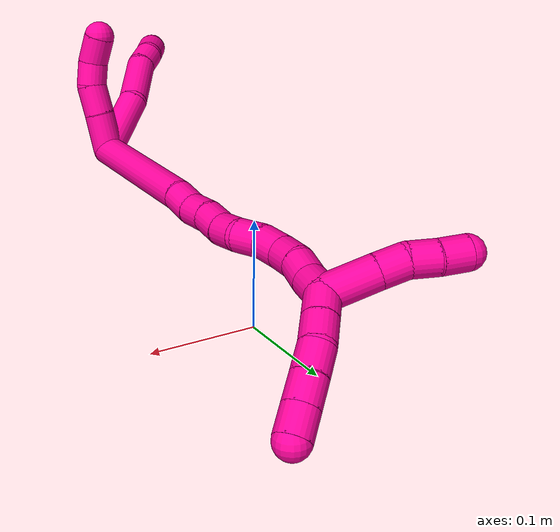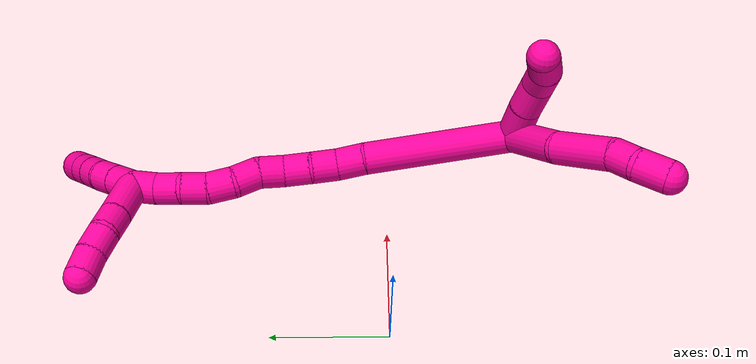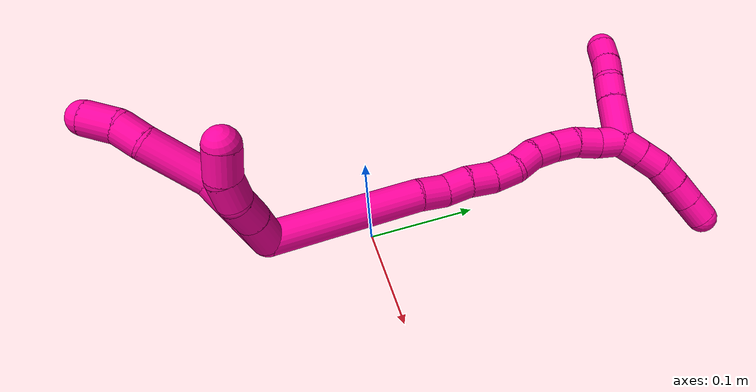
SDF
<sdf version="1.7">
 <world name="default">
  <model name="18">
   <static>0</static>
   <link name="18">
    <collision name="collision-cylinder-e_1_2_8">
     <pose>-0.015564 -0.015659 0.017692 0.724512 -0.582527 -0.226258</pose>
     <geometry><cylinder><radius>0.0125</radius><length>0.056584</length></cylinder></geometry>
     <surface>
      <friction><ode><mu>1.16</mu><mu2>1.16</mu2><slip1>0</slip1><slip2>0</slip2></ode></friction>
      <contact><ode><kp>1e+06</kp><kd>1</kd><max_vel>0</max_vel><min_depth>0.001</min_depth></ode></contact>
     </surface>
    </collision>
    <visual name="visual-cylinder-e_1_2_8">
     <pose>-0.015564 -0.015659 0.017692 0.724512 -0.582527 -0.226258</pose>
     <geometry><cylinder><radius>0.0125</radius><length>0.056584</length></cylinder></geometry>
     <material><ambient>1 0.007843 0.615686 1</ambient></material>
    </visual>
    <collision name="collision-cylinder-e_2_8_9">
     <pose>-0.040038 -0.049951 0.048316 0.964079 -0.374277 -0.197498</pose>
     <geometry><cylinder><radius>0.0125</radius><length>0.048738</length></cylinder></geometry>
     <surface>
      <friction><ode><mu>1.16</mu><mu2>1.16</mu2><slip1>0</slip1><slip2>0</slip2></ode></friction>
      <contact><ode><kp>1e+06</kp><kd>1</kd><max_vel>0</max_vel><min_depth>0.001</min_depth></ode></contact>
     </surface>
    </collision>
    <visual name="visual-cylinder-e_2_8_9">
     <pose>-0.040038 -0.049951 0.048316 0.964079 -0.374277 -0.197498</pose>
     <geometry><cylinder><radius>0.0125</radius><length>0.048738</length></cylinder></geometry>
     <material><ambient>1 0.007843 0.615686 1</ambient></material>
    </visual>
    <collision name="collision-cylinder-e_3_9_10">
     <pose>-0.054535 -0.076037 0.065041 1.10005 -0.589144 -0.367847</pose>
     <geometry><cylinder><radius>0.0125</radius><length>0.020113</length></cylinder></geometry>
     <surface>
      <friction><ode><mu>1.16</mu><mu2>1.16</mu2><slip1>0</slip1><slip2>0</slip2></ode></friction>
      <contact><ode><kp>1e+06</kp><kd>1</kd><max_vel>0</max_vel><min_depth>0.001</min_depth></ode></contact>
     </surface>
    </collision>
    <visual name="visual-cylinder-e_3_9_10">
     <pose>-0.054535 -0.076037 0.065041 1.10005 -0.589144 -0.367847</pose>
     <geometry><cylinder><radius>0.0125</radius><length>0.020113</length></cylinder></geometry>
     <material><ambient>1 0.007843 0.615686 1</ambient></material>
    </visual>
    <collision name="collision-cylinder-e_4_10_6">
     <pose>-0.06477 -0.094689 0.070786 1.39818 -0.387991 -0.327395</pose>
     <geometry><cylinder><radius>0.0125</radius><length>0.024565</length></cylinder></geometry>
     <surface>
      <friction><ode><mu>1.16</mu><mu2>1.16</mu2><slip1>0</slip1><slip2>0</slip2></ode></friction>
      <contact><ode><kp>1e+06</kp><kd>1</kd><max_vel>0</max_vel><min_depth>0.001</min_depth></ode></contact>
     </surface>
    </collision>
    <visual name="visual-cylinder-e_4_10_6">
     <pose>-0.06477 -0.094689 0.070786 1.39818 -0.387991 -0.327395</pose>
     <geometry><cylinder><radius>0.0125</radius><length>0.024565</length></cylinder></geometry>
     <material><ambient>1 0.007843 0.615686 1</ambient></material>
    </visual>
    <collision name="collision-cylinder-e_1_2_11">
     <pose>0.002387 -0.002302 0.015502 0.147444 0.151141 0.011184</pose>
     <geometry><cylinder><radius>0.0125</radius><length>0.031705</length></cylinder></geometry>
     <surface>
      <friction><ode><mu>1.16</mu><mu2>1.16</mu2><slip1>0</slip1><slip2>0</slip2></ode></friction>
      <contact><ode><kp>1e+06</kp><kd>1</kd><max_vel>0</max_vel><min_depth>0.001</min_depth></ode></contact>
     </surface>
    </collision>
    <visual name="visual-cylinder-e_1_2_11">
     <pose>0.002387 -0.002302 0.015502 0.147444 0.151141 0.011184</pose>
     <geometry><cylinder><radius>0.0125</radius><length>0.031705</length></cylinder></geometry>
     <material><ambient>1 0.007843 0.615686 1</ambient></material>
    </visual>
    <collision name="collision-cylinder-e_2_11_12">
     <pose>0.006832 -0.007255 0.043044 0.21665 0.165392 0.018027</pose>
     <geometry><cylinder><radius>0.0125</radius><length>0.025</length></cylinder></geometry>
     <surface>
      <friction><ode><mu>1.16</mu><mu2>1.16</mu2><slip1>0</slip1><slip2>0</slip2></ode></friction>
      <contact><ode><kp>1e+06</kp><kd>1</kd><max_vel>0</max_vel><min_depth>0.001</min_depth></ode></contact>
     </surface>
    </collision>
    <visual name="visual-cylinder-e_2_11_12">
     <pose>0.006832 -0.007255 0.043044 0.21665 0.165392 0.018027</pose>
     <geometry><cylinder><radius>0.0125</radius><length>0.025</length></cylinder></geometry>
     <material><ambient>1 0.007843 0.615686 1</ambient></material>
    </visual>
    <collision name="collision-cylinder-e_3_12_13">
     <pose>0.007409 -0.01108 0.064915 0.118915 -0.148447 -0.008853</pose>
     <geometry><cylinder><radius>0.0125</radius><length>0.02002</length></cylinder></geometry>
     <surface>
      <friction><ode><mu>1.16</mu><mu2>1.16</mu2><slip1>0</slip1><slip2>0</slip2></ode></friction>
      <contact><ode><kp>1e+06</kp><kd>1</kd><max_vel>0</max_vel><min_depth>0.001</min_depth></ode></contact>
     </surface>
    </collision>
    <visual name="visual-cylinder-e_3_12_13">
     <pose>0.007409 -0.01108 0.064915 0.118915 -0.148447 -0.008853</pose>
     <geometry><cylinder><radius>0.0125</radius><length>0.02002</length></cylinder></geometry>
     <material><ambient>1 0.007843 0.615686 1</ambient></material>
    </visual>
    <collision name="collision-cylinder-e_4_13_5">
     <pose>0.00299 -0.009922 0.085762 -0.20858 -0.255269 0.026863</pose>
     <geometry><cylinder><radius>0.0125</radius><length>0.023276</length></cylinder></geometry>
     <surface>
      <friction><ode><mu>1.16</mu><mu2>1.16</mu2><slip1>0</slip1><slip2>0</slip2></ode></friction>
      <contact><ode><kp>1e+06</kp><kd>1</kd><max_vel>0</max_vel><min_depth>0.001</min_depth></ode></contact>
     </surface>
    </collision>
    <visual name="visual-cylinder-e_4_13_5">
     <pose>0.00299 -0.009922 0.085762 -0.20858 -0.255269 0.026863</pose>
     <geometry><cylinder><radius>0.0125</radius><length>0.023276</length></cylinder></geometry>
     <material><ambient>1 0.007843 0.615686 1</ambient></material>
    </visual>
    <collision name="collision-cylinder-e_1_2_14">
     <pose>-0.015794 0.054631 -0.008382 -1.72303 -0.278348 0.323567</pose>
     <geometry><cylinder><radius>0.0125</radius><length>0.114965</length></cylinder></geometry>
     <surface>
      <friction><ode><mu>1.16</mu><mu2>1.16</mu2><slip1>0</slip1><slip2>0</slip2></ode></friction>
      <contact><ode><kp>1e+06</kp><kd>1</kd><max_vel>0</max_vel><min_depth>0.001</min_depth></ode></contact>
     </surface>
    </collision>
    <visual name="visual-cylinder-e_1_2_14">
     <pose>-0.015794 0.054631 -0.008382 -1.72303 -0.278348 0.323567</pose>
     <geometry><cylinder><radius>0.0125</radius><length>0.114965</length></cylinder></geometry>
     <material><ambient>1 0.007843 0.615686 1</ambient></material>
    </visual>
    <collision name="collision-cylinder-e_2_14_15">
     <pose>-0.034252 0.119324 -0.019855 -1.8689 -0.247839 0.334014</pose>
     <geometry><cylinder><radius>0.0125</radius><length>0.021716</length></cylinder></geometry>
     <surface>
      <friction><ode><mu>1.16</mu><mu2>1.16</mu2><slip1>0</slip1><slip2>0</slip2></ode></friction>
      <contact><ode><kp>1e+06</kp><kd>1</kd><max_vel>0</max_vel><min_depth>0.001</min_depth></ode></contact>
     </surface>
    </collision>
    <visual name="visual-cylinder-e_2_14_15">
     <pose>-0.034252 0.119324 -0.019855 -1.8689 -0.247839 0.334014</pose>
     <geometry><cylinder><radius>0.0125</radius><length>0.021716</length></cylinder></geometry>
     <material><ambient>1 0.007843 0.615686 1</ambient></material>
    </visual>
    <collision name="collision-cylinder-e_3_15_16">
     <pose>-0.040012 0.139124 -0.02359 -1.63675 -0.307204 0.327804</pose>
     <geometry><cylinder><radius>0.0125</radius><length>0.020479</length></cylinder></geometry>
     <surface>
      <friction><ode><mu>1.16</mu><mu2>1.16</mu2><slip1>0</slip1><slip2>0</slip2></ode></friction>
      <contact><ode><kp>1e+06</kp><kd>1</kd><max_vel>0</max_vel><min_depth>0.001</min_depth></ode></contact>
     </surface>
    </collision>
    <visual name="visual-cylinder-e_3_15_16">
     <pose>-0.040012 0.139124 -0.02359 -1.63675 -0.307204 0.327804</pose>
     <geometry><cylinder><radius>0.0125</radius><length>0.020479</length></cylinder></geometry>
     <material><ambient>1 0.007843 0.615686 1</ambient></material>
    </visual>
    <collision name="collision-cylinder-e_4_16_17">
     <pose>-0.045143 0.159062 -0.026381 -1.77832 -0.192766 0.237201</pose>
     <geometry><cylinder><radius>0.0125</radius><length>0.021237</length></cylinder></geometry>
     <surface>
      <friction><ode><mu>1.16</mu><mu2>1.16</mu2><slip1>0</slip1><slip2>0</slip2></ode></friction>
      <contact><ode><kp>1e+06</kp><kd>1</kd><max_vel>0</max_vel><min_depth>0.001</min_depth></ode></contact>
     </surface>
    </collision>
    <visual name="visual-cylinder-e_4_16_17">
     <pose>-0.045143 0.159062 -0.026381 -1.77832 -0.192766 0.237201</pose>
     <geometry><cylinder><radius>0.0125</radius><length>0.021237</length></cylinder></geometry>
     <material><ambient>1 0.007843 0.615686 1</ambient></material>
    </visual>
    <collision name="collision-cylinder-e_5_17_18">
     <pose>-0.050023 0.179032 -0.028331 -1.55067 -0.283392 0.277819</pose>
     <geometry><cylinder><radius>0.0125</radius><length>0.020359</length></cylinder></geometry>
     <surface>
      <friction><ode><mu>1.16</mu><mu2>1.16</mu2><slip1>0</slip1><slip2>0</slip2></ode></friction>
      <contact><ode><kp>1e+06</kp><kd>1</kd><max_vel>0</max_vel><min_depth>0.001</min_depth></ode></contact>
     </surface>
    </collision>
    <visual name="visual-cylinder-e_5_17_18">
     <pose>-0.050023 0.179032 -0.028331 -1.55067 -0.283392 0.277819</pose>
     <geometry><cylinder><radius>0.0125</radius><length>0.020359</length></cylinder></geometry>
     <material><ambient>1 0.007843 0.615686 1</ambient></material>
    </visual>
    <collision name="collision-cylinder-e_6_18_19">
     <pose>-0.058795 0.197137 -0.028598 -1.62636 -0.617317 0.650233</pose>
     <geometry><cylinder><radius>0.0125</radius><length>0.020473</length></cylinder></geometry>
     <surface>
      <friction><ode><mu>1.16</mu><mu2>1.16</mu2><slip1>0</slip1><slip2>0</slip2></ode></friction>
      <contact><ode><kp>1e+06</kp><kd>1</kd><max_vel>0</max_vel><min_depth>0.001</min_depth></ode></contact>
     </surface>
    </collision>
    <visual name="visual-cylinder-e_6_18_19">
     <pose>-0.058795 0.197137 -0.028598 -1.62636 -0.617317 0.650233</pose>
     <geometry><cylinder><radius>0.0125</radius><length>0.020473</length></cylinder></geometry>
     <material><ambient>1 0.007843 0.615686 1</ambient></material>
    </visual>
    <collision name="collision-cylinder-e_7_19_20">
     <pose>-0.068371 0.214968 -0.030758 -1.74758 -0.361794 0.430171</pose>
     <geometry><cylinder><radius>0.0125</radius><length>0.02063</length></cylinder></geometry>
     <surface>
      <friction><ode><mu>1.16</mu><mu2>1.16</mu2><slip1>0</slip1><slip2>0</slip2></ode></friction>
      <contact><ode><kp>1e+06</kp><kd>1</kd><max_vel>0</max_vel><min_depth>0.001</min_depth></ode></contact>
     </surface>
    </collision>
    <visual name="visual-cylinder-e_7_19_20">
     <pose>-0.068371 0.214968 -0.030758 -1.74758 -0.361794 0.430171</pose>
     <geometry><cylinder><radius>0.0125</radius><length>0.02063</length></cylinder></geometry>
     <material><ambient>1 0.007843 0.615686 1</ambient></material>
    </visual>
    <collision name="collision-cylinder-e_8_20_21">
     <pose>-0.073524 0.234337 -0.033167 -1.64282 -0.150532 0.161736</pose>
     <geometry><cylinder><radius>0.0125</radius><length>0.020021</length></cylinder></geometry>
     <surface>
      <friction><ode><mu>1.16</mu><mu2>1.16</mu2><slip1>0</slip1><slip2>0</slip2></ode></friction>
      <contact><ode><kp>1e+06</kp><kd>1</kd><max_vel>0</max_vel><min_depth>0.001</min_depth></ode></contact>
     </surface>
    </collision>
    <visual name="visual-cylinder-e_8_20_21">
     <pose>-0.073524 0.234337 -0.033167 -1.64282 -0.150532 0.161736</pose>
     <geometry><cylinder><radius>0.0125</radius><length>0.020021</length></cylinder></geometry>
     <material><ambient>1 0.007843 0.615686 1</ambient></material>
    </visual>
    <collision name="collision-cylinder-e_9_21_22">
     <pose>-0.075094 0.253856 -0.036709 -1.85609 -0.006853 0.009151</pose>
     <geometry><cylinder><radius>0.0125</radius><length>0.020109</length></cylinder></geometry>
     <surface>
      <friction><ode><mu>1.16</mu><mu2>1.16</mu2><slip1>0</slip1><slip2>0</slip2></ode></friction>
      <contact><ode><kp>1e+06</kp><kd>1</kd><max_vel>0</max_vel><min_depth>0.001</min_depth></ode></contact>
     </surface>
    </collision>
    <visual name="visual-cylinder-e_9_21_22">
     <pose>-0.075094 0.253856 -0.036709 -1.85609 -0.006853 0.009151</pose>
     <geometry><cylinder><radius>0.0125</radius><length>0.020109</length></cylinder></geometry>
     <material><ambient>1 0.007843 0.615686 1</ambient></material>
    </visual>
    <collision name="collision-cylinder-e_10_22_1">
     <pose>-0.075254 0.273456 -0.040568 -1.67388 -0.009121 0.010113</pose>
     <geometry><cylinder><radius>0.0125</radius><length>0.020011</length></cylinder></geometry>
     <surface>
      <friction><ode><mu>1.16</mu><mu2>1.16</mu2><slip1>0</slip1><slip2>0</slip2></ode></friction>
      <contact><ode><kp>1e+06</kp><kd>1</kd><max_vel>0</max_vel><min_depth>0.001</min_depth></ode></contact>
     </surface>
    </collision>
    <visual name="visual-cylinder-e_10_22_1">
     <pose>-0.075254 0.273456 -0.040568 -1.67388 -0.009121 0.010113</pose>
     <geometry><cylinder><radius>0.0125</radius><length>0.020011</length></cylinder></geometry>
     <material><ambient>1 0.007843 0.615686 1</ambient></material>
    </visual>
    <collision name="collision-cylinder-e_1_1_23">
     <pose>-0.093313 0.285341 -0.036124 -0.339541 -1.25832 0.248246</pose>
     <geometry><cylinder><radius>0.0125</radius><length>0.037764</length></cylinder></geometry>
     <surface>
      <friction><ode><mu>1.16</mu><mu2>1.16</mu2><slip1>0</slip1><slip2>0</slip2></ode></friction>
      <contact><ode><kp>1e+06</kp><kd>1</kd><max_vel>0</max_vel><min_depth>0.001</min_depth></ode></contact>
     </surface>
    </collision>
    <visual name="visual-cylinder-e_1_1_23">
     <pose>-0.093313 0.285341 -0.036124 -0.339541 -1.25832 0.248246</pose>
     <geometry><cylinder><radius>0.0125</radius><length>0.037764</length></cylinder></geometry>
     <material><ambient>1 0.007843 0.615686 1</ambient></material>
    </visual>
    <collision name="collision-cylinder-e_2_23_24">
     <pose>-0.121209 0.28865 -0.027731 -0.440156 -1.25651 0.322198</pose>
     <geometry><cylinder><radius>0.0125</radius><length>0.02088</length></cylinder></geometry>
     <surface>
      <friction><ode><mu>1.16</mu><mu2>1.16</mu2><slip1>0</slip1><slip2>0</slip2></ode></friction>
      <contact><ode><kp>1e+06</kp><kd>1</kd><max_vel>0</max_vel><min_depth>0.001</min_depth></ode></contact>
     </surface>
    </collision>
    <visual name="visual-cylinder-e_2_23_24">
     <pose>-0.121209 0.28865 -0.027731 -0.440156 -1.25651 0.322198</pose>
     <geometry><cylinder><radius>0.0125</radius><length>0.02088</length></cylinder></geometry>
     <material><ambient>1 0.007843 0.615686 1</ambient></material>
    </visual>
    <collision name="collision-cylinder-e_3_24_25">
     <pose>-0.141199 0.292235 -0.024578 -1.46558 -1.3534 1.25181</pose>
     <geometry><cylinder><radius>0.0125</radius><length>0.020607</length></cylinder></geometry>
     <surface>
      <friction><ode><mu>1.16</mu><mu2>1.16</mu2><slip1>0</slip1><slip2>0</slip2></ode></friction>
      <contact><ode><kp>1e+06</kp><kd>1</kd><max_vel>0</max_vel><min_depth>0.001</min_depth></ode></contact>
     </surface>
    </collision>
    <visual name="visual-cylinder-e_3_24_25">
     <pose>-0.141199 0.292235 -0.024578 -1.46558 -1.3534 1.25181</pose>
     <geometry><cylinder><radius>0.0125</radius><length>0.020607</length></cylinder></geometry>
     <material><ambient>1 0.007843 0.615686 1</ambient></material>
    </visual>
    <collision name="collision-cylinder-e_4_25_4">
     <pose>-0.161573 0.295431 -0.023799 -1.06542 -1.46191 0.972571</pose>
     <geometry><cylinder><radius>0.0125</radius><length>0.020749</length></cylinder></geometry>
     <surface>
      <friction><ode><mu>1.16</mu><mu2>1.16</mu2><slip1>0</slip1><slip2>0</slip2></ode></friction>
      <contact><ode><kp>1e+06</kp><kd>1</kd><max_vel>0</max_vel><min_depth>0.001</min_depth></ode></contact>
     </surface>
    </collision>
    <visual name="visual-cylinder-e_4_25_4">
     <pose>-0.161573 0.295431 -0.023799 -1.06542 -1.46191 0.972571</pose>
     <geometry><cylinder><radius>0.0125</radius><length>0.020749</length></cylinder></geometry>
     <material><ambient>1 0.007843 0.615686 1</ambient></material>
    </visual>
    <collision name="collision-cylinder-e_1_1_26">
     <pose>-0.070994 0.291069 -0.046328 -2.12396 0.450153 -0.778979</pose>
     <geometry><cylinder><radius>0.0125</radius><length>0.02</length></cylinder></geometry>
     <surface>
      <friction><ode><mu>1.16</mu><mu2>1.16</mu2><slip1>0</slip1><slip2>0</slip2></ode></friction>
      <contact><ode><kp>1e+06</kp><kd>1</kd><max_vel>0</max_vel><min_depth>0.001</min_depth></ode></contact>
     </surface>
    </collision>
    <visual name="visual-cylinder-e_1_1_26">
     <pose>-0.070994 0.291069 -0.046328 -2.12396 0.450153 -0.778979</pose>
     <geometry><cylinder><radius>0.0125</radius><length>0.02</length></cylinder></geometry>
     <material><ambient>1 0.007843 0.615686 1</ambient></material>
    </visual>
    <collision name="collision-cylinder-e_2_26_27">
     <pose>-0.062298 0.306266 -0.055991 -2.15037 0.449525 -0.800175</pose>
     <geometry><cylinder><radius>0.0125</radius><length>0.02</length></cylinder></geometry>
     <surface>
      <friction><ode><mu>1.16</mu><mu2>1.16</mu2><slip1>0</slip1><slip2>0</slip2></ode></friction>
      <contact><ode><kp>1e+06</kp><kd>1</kd><max_vel>0</max_vel><min_depth>0.001</min_depth></ode></contact>
     </surface>
    </collision>
    <visual name="visual-cylinder-e_2_26_27">
     <pose>-0.062298 0.306266 -0.055991 -2.15037 0.449525 -0.800175</pose>
     <geometry><cylinder><radius>0.0125</radius><length>0.02</length></cylinder></geometry>
     <material><ambient>1 0.007843 0.615686 1</ambient></material>
    </visual>
    <collision name="collision-cylinder-e_3_27_28">
     <pose>-0.052817 0.319655 -0.067197 -2.39081 0.539311 -1.22326</pose>
     <geometry><cylinder><radius>0.0125</radius><length>0.02</length></cylinder></geometry>
     <surface>
      <friction><ode><mu>1.16</mu><mu2>1.16</mu2><slip1>0</slip1><slip2>0</slip2></ode></friction>
      <contact><ode><kp>1e+06</kp><kd>1</kd><max_vel>0</max_vel><min_depth>0.001</min_depth></ode></contact>
     </surface>
    </collision>
    <visual name="visual-cylinder-e_3_27_28">
     <pose>-0.052817 0.319655 -0.067197 -2.39081 0.539311 -1.22326</pose>
     <geometry><cylinder><radius>0.0125</radius><length>0.02</length></cylinder></geometry>
     <material><ambient>1 0.007843 0.615686 1</ambient></material>
    </visual>
    <collision name="collision-cylinder-e_4_28_29">
     <pose>-0.042552 0.330987 -0.080081 -2.44953 0.538605 -1.30675</pose>
     <geometry><cylinder><radius>0.0125</radius><length>0.02</length></cylinder></geometry>
     <surface>
      <friction><ode><mu>1.16</mu><mu2>1.16</mu2><slip1>0</slip1><slip2>0</slip2></ode></friction>
      <contact><ode><kp>1e+06</kp><kd>1</kd><max_vel>0</max_vel><min_depth>0.001</min_depth></ode></contact>
     </surface>
    </collision>
    <visual name="visual-cylinder-e_4_28_29">
     <pose>-0.042552 0.330987 -0.080081 -2.44953 0.538605 -1.30675</pose>
     <geometry><cylinder><radius>0.0125</radius><length>0.02</length></cylinder></geometry>
     <material><ambient>1 0.007843 0.615686 1</ambient></material>
    </visual>
    <collision name="collision-cylinder-e_5_29_3">
     <pose>-0.032315 0.34198 -0.093285 -2.44516 0.536049 -1.29535</pose>
     <geometry><cylinder><radius>0.0125</radius><length>0.02</length></cylinder></geometry>
     <surface>
      <friction><ode><mu>1.16</mu><mu2>1.16</mu2><slip1>0</slip1><slip2>0</slip2></ode></friction>
      <contact><ode><kp>1e+06</kp><kd>1</kd><max_vel>0</max_vel><min_depth>0.001</min_depth></ode></contact>
     </surface>
    </collision>
    <visual name="visual-cylinder-e_5_29_3">
     <pose>-0.032315 0.34198 -0.093285 -2.44516 0.536049 -1.29535</pose>
     <geometry><cylinder><radius>0.0125</radius><length>0.02</length></cylinder></geometry>
     <material><ambient>1 0.007843 0.615686 1</ambient></material>
    </visual>
    <collision name="collision-sphere-3">
     <pose>-0.027208 0.347495 -0.09988 0 -0 0</pose>
     <geometry><sphere><radius>0.0125</radius></sphere></geometry>
     <surface>
      <friction><ode><mu>1.16</mu><mu2>1.16</mu2><slip1>0</slip1><slip2>0</slip2></ode></friction>
      <contact><ode><kp>1e+06</kp><kd>1</kd><max_vel>0</max_vel><min_depth>0.001</min_depth></ode></contact>
     </surface>
    </collision>
    <visual name="visual-sphere-3">
     <pose>-0.027208 0.347495 -0.09988 0 -0 0</pose>
     <geometry><sphere><radius>0.0125</radius></sphere></geometry>
     <material><ambient>1 0.007843 0.615686 1</ambient></material>
    </visual>
    <collision name="collision-sphere-29">
     <pose>-0.037423 0.336465 -0.08669 0 -0 0</pose>
     <geometry><sphere><radius>0.0125</radius></sphere></geometry>
     <surface>
      <friction><ode><mu>1.16</mu><mu2>1.16</mu2><slip1>0</slip1><slip2>0</slip2></ode></friction>
      <contact><ode><kp>1e+06</kp><kd>1</kd><max_vel>0</max_vel><min_depth>0.001</min_depth></ode></contact>
     </surface>
    </collision>
    <visual name="visual-sphere-29">
     <pose>-0.037423 0.336465 -0.08669 0 -0 0</pose>
     <geometry><sphere><radius>0.0125</radius></sphere></geometry>
     <material><ambient>1 0.007843 0.615686 1</ambient></material>
    </visual>
    <collision name="collision-sphere-28">
     <pose>-0.047681 0.325509 -0.073471 0 -0 0</pose>
     <geometry><sphere><radius>0.0125</radius></sphere></geometry>
     <surface>
      <friction><ode><mu>1.16</mu><mu2>1.16</mu2><slip1>0</slip1><slip2>0</slip2></ode></friction>
      <contact><ode><kp>1e+06</kp><kd>1</kd><max_vel>0</max_vel><min_depth>0.001</min_depth></ode></contact>
     </surface>
    </collision>
    <visual name="visual-sphere-28">
     <pose>-0.047681 0.325509 -0.073471 0 -0 0</pose>
     <geometry><sphere><radius>0.0125</radius></sphere></geometry>
     <material><ambient>1 0.007843 0.615686 1</ambient></material>
    </visual>
    <collision name="collision-sphere-27">
     <pose>-0.057952 0.313802 -0.060924 0 -0 0</pose>
     <geometry><sphere><radius>0.0125</radius></sphere></geometry>
     <surface>
      <friction><ode><mu>1.16</mu><mu2>1.16</mu2><slip1>0</slip1><slip2>0</slip2></ode></friction>
      <contact><ode><kp>1e+06</kp><kd>1</kd><max_vel>0</max_vel><min_depth>0.001</min_depth></ode></contact>
     </surface>
    </collision>
    <visual name="visual-sphere-27">
     <pose>-0.057952 0.313802 -0.060924 0 -0 0</pose>
     <geometry><sphere><radius>0.0125</radius></sphere></geometry>
     <material><ambient>1 0.007843 0.615686 1</ambient></material>
    </visual>
    <collision name="collision-sphere-26">
     <pose>-0.066643 0.29873 -0.051059 0 -0 0</pose>
     <geometry><sphere><radius>0.0125</radius></sphere></geometry>
     <surface>
      <friction><ode><mu>1.16</mu><mu2>1.16</mu2><slip1>0</slip1><slip2>0</slip2></ode></friction>
      <contact><ode><kp>1e+06</kp><kd>1</kd><max_vel>0</max_vel><min_depth>0.001</min_depth></ode></contact>
     </surface>
    </collision>
    <visual name="visual-sphere-26">
     <pose>-0.066643 0.29873 -0.051059 0 -0 0</pose>
     <geometry><sphere><radius>0.0125</radius></sphere></geometry>
     <material><ambient>1 0.007843 0.615686 1</ambient></material>
    </visual>
    <collision name="collision-sphere-4">
     <pose>-0.171886 0.296418 -0.023253 0 -0 0</pose>
     <geometry><sphere><radius>0.0125</radius></sphere></geometry>
     <surface>
      <friction><ode><mu>1.16</mu><mu2>1.16</mu2><slip1>0</slip1><slip2>0</slip2></ode></friction>
      <contact><ode><kp>1e+06</kp><kd>1</kd><max_vel>0</max_vel><min_depth>0.001</min_depth></ode></contact>
     </surface>
    </collision>
    <visual name="visual-sphere-4">
     <pose>-0.171886 0.296418 -0.023253 0 -0 0</pose>
     <geometry><sphere><radius>0.0125</radius></sphere></geometry>
     <material><ambient>1 0.007843 0.615686 1</ambient></material>
    </visual>
    <collision name="collision-sphere-25">
     <pose>-0.15126 0.294445 -0.024345 0 -0 0</pose>
     <geometry><sphere><radius>0.0125</radius></sphere></geometry>
     <surface>
      <friction><ode><mu>1.16</mu><mu2>1.16</mu2><slip1>0</slip1><slip2>0</slip2></ode></friction>
      <contact><ode><kp>1e+06</kp><kd>1</kd><max_vel>0</max_vel><min_depth>0.001</min_depth></ode></contact>
     </surface>
    </collision>
    <visual name="visual-sphere-25">
     <pose>-0.15126 0.294445 -0.024345 0 -0 0</pose>
     <geometry><sphere><radius>0.0125</radius></sphere></geometry>
     <material><ambient>1 0.007843 0.615686 1</ambient></material>
    </visual>
    <collision name="collision-sphere-24">
     <pose>-0.131138 0.290025 -0.024812 0 -0 0</pose>
     <geometry><sphere><radius>0.0125</radius></sphere></geometry>
     <surface>
      <friction><ode><mu>1.16</mu><mu2>1.16</mu2><slip1>0</slip1><slip2>0</slip2></ode></friction>
      <contact><ode><kp>1e+06</kp><kd>1</kd><max_vel>0</max_vel><min_depth>0.001</min_depth></ode></contact>
     </surface>
    </collision>
    <visual name="visual-sphere-24">
     <pose>-0.131138 0.290025 -0.024812 0 -0 0</pose>
     <geometry><sphere><radius>0.0125</radius></sphere></geometry>
     <material><ambient>1 0.007843 0.615686 1</ambient></material>
    </visual>
    <collision name="collision-sphere-23">
     <pose>-0.111281 0.287275 -0.030651 0 -0 0</pose>
     <geometry><sphere><radius>0.0125</radius></sphere></geometry>
     <surface>
      <friction><ode><mu>1.16</mu><mu2>1.16</mu2><slip1>0</slip1><slip2>0</slip2></ode></friction>
      <contact><ode><kp>1e+06</kp><kd>1</kd><max_vel>0</max_vel><min_depth>0.001</min_depth></ode></contact>
     </surface>
    </collision>
    <visual name="visual-sphere-23">
     <pose>-0.111281 0.287275 -0.030651 0 -0 0</pose>
     <geometry><sphere><radius>0.0125</radius></sphere></geometry>
     <material><ambient>1 0.007843 0.615686 1</ambient></material>
    </visual>
    <collision name="collision-sphere-1">
     <pose>-0.075345 0.283408 -0.041598 0 -0 0</pose>
     <geometry><sphere><radius>0.0125</radius></sphere></geometry>
     <surface>
      <friction><ode><mu>1.16</mu><mu2>1.16</mu2><slip1>0</slip1><slip2>0</slip2></ode></friction>
      <contact><ode><kp>1e+06</kp><kd>1</kd><max_vel>0</max_vel><min_depth>0.001</min_depth></ode></contact>
     </surface>
    </collision>
    <visual name="visual-sphere-1">
     <pose>-0.075345 0.283408 -0.041598 0 -0 0</pose>
     <geometry><sphere><radius>0.0125</radius></sphere></geometry>
     <material><ambient>1 0.007843 0.615686 1</ambient></material>
    </visual>
    <collision name="collision-sphere-22">
     <pose>-0.075163 0.263504 -0.039539 0 -0 0</pose>
     <geometry><sphere><radius>0.0125</radius></sphere></geometry>
     <surface>
      <friction><ode><mu>1.16</mu><mu2>1.16</mu2><slip1>0</slip1><slip2>0</slip2></ode></friction>
      <contact><ode><kp>1e+06</kp><kd>1</kd><max_vel>0</max_vel><min_depth>0.001</min_depth></ode></contact>
     </surface>
    </collision>
    <visual name="visual-sphere-22">
     <pose>-0.075163 0.263504 -0.039539 0 -0 0</pose>
     <geometry><sphere><radius>0.0125</radius></sphere></geometry>
     <material><ambient>1 0.007843 0.615686 1</ambient></material>
    </visual>
    <collision name="collision-sphere-21">
     <pose>-0.075025 0.244208 -0.033879 0 -0 0</pose>
     <geometry><sphere><radius>0.0125</radius></sphere></geometry>
     <surface>
      <friction><ode><mu>1.16</mu><mu2>1.16</mu2><slip1>0</slip1><slip2>0</slip2></ode></friction>
      <contact><ode><kp>1e+06</kp><kd>1</kd><max_vel>0</max_vel><min_depth>0.001</min_depth></ode></contact>
     </surface>
    </collision>
    <visual name="visual-sphere-21">
     <pose>-0.075025 0.244208 -0.033879 0 -0 0</pose>
     <geometry><sphere><radius>0.0125</radius></sphere></geometry>
     <material><ambient>1 0.007843 0.615686 1</ambient></material>
    </visual>
    <collision name="collision-sphere-11">
     <pose>0.004774 -0.004605 0.031003 0 -0 0</pose>
     <geometry><sphere><radius>0.0125</radius></sphere></geometry>
     <surface>
      <friction><ode><mu>1.16</mu><mu2>1.16</mu2><slip1>0</slip1><slip2>0</slip2></ode></friction>
      <contact><ode><kp>1e+06</kp><kd>1</kd><max_vel>0</max_vel><min_depth>0.001</min_depth></ode></contact>
     </surface>
    </collision>
    <visual name="visual-sphere-11">
     <pose>0.004774 -0.004605 0.031003 0 -0 0</pose>
     <geometry><sphere><radius>0.0125</radius></sphere></geometry>
     <material><ambient>1 0.007843 0.615686 1</ambient></material>
    </visual>
    <collision name="collision-sphere-6">
     <pose>-0.069417 -0.105889 0.072739 0 -0 0</pose>
     <geometry><sphere><radius>0.0125</radius></sphere></geometry>
     <surface>
      <friction><ode><mu>1.16</mu><mu2>1.16</mu2><slip1>0</slip1><slip2>0</slip2></ode></friction>
      <contact><ode><kp>1e+06</kp><kd>1</kd><max_vel>0</max_vel><min_depth>0.001</min_depth></ode></contact>
     </surface>
    </collision>
    <visual name="visual-sphere-6">
     <pose>-0.069417 -0.105889 0.072739 0 -0 0</pose>
     <geometry><sphere><radius>0.0125</radius></sphere></geometry>
     <material><ambient>1 0.007843 0.615686 1</ambient></material>
    </visual>
    <collision name="collision-sphere-10">
     <pose>-0.060123 -0.083488 0.068833 0 -0 0</pose>
     <geometry><sphere><radius>0.0125</radius></sphere></geometry>
     <surface>
      <friction><ode><mu>1.16</mu><mu2>1.16</mu2><slip1>0</slip1><slip2>0</slip2></ode></friction>
      <contact><ode><kp>1e+06</kp><kd>1</kd><max_vel>0</max_vel><min_depth>0.001</min_depth></ode></contact>
     </surface>
    </collision>
    <visual name="visual-sphere-10">
     <pose>-0.060123 -0.083488 0.068833 0 -0 0</pose>
     <geometry><sphere><radius>0.0125</radius></sphere></geometry>
     <material><ambient>1 0.007843 0.615686 1</ambient></material>
    </visual>
    <collision name="collision-sphere-9">
     <pose>-0.048947 -0.068585 0.061249 0 -0 0</pose>
     <geometry><sphere><radius>0.0125</radius></sphere></geometry>
     <surface>
      <friction><ode><mu>1.16</mu><mu2>1.16</mu2><slip1>0</slip1><slip2>0</slip2></ode></friction>
      <contact><ode><kp>1e+06</kp><kd>1</kd><max_vel>0</max_vel><min_depth>0.001</min_depth></ode></contact>
     </surface>
    </collision>
    <visual name="visual-sphere-9">
     <pose>-0.048947 -0.068585 0.061249 0 -0 0</pose>
     <geometry><sphere><radius>0.0125</radius></sphere></geometry>
     <material><ambient>1 0.007843 0.615686 1</ambient></material>
    </visual>
    <collision name="collision-sphere-2">
     <geometry><sphere><radius>0.0125</radius></sphere></geometry>
     <surface>
      <friction><ode><mu>1.16</mu><mu2>1.16</mu2><slip1>0</slip1><slip2>0</slip2></ode></friction>
      <contact><ode><kp>1e+06</kp><kd>1</kd><max_vel>0</max_vel><min_depth>0.001</min_depth></ode></contact>
     </surface>
    </collision>
    <visual name="visual-sphere-2">
     <geometry><sphere><radius>0.0125</radius></sphere></geometry>
     <material><ambient>1 0.007843 0.615686 1</ambient></material>
    </visual>
    <collision name="collision-sphere-19">
     <pose>-0.06472 0.205472 -0.029062 0 -0 0</pose>
     <geometry><sphere><radius>0.0125</radius></sphere></geometry>
     <surface>
      <friction><ode><mu>1.16</mu><mu2>1.16</mu2><slip1>0</slip1><slip2>0</slip2></ode></friction>
      <contact><ode><kp>1e+06</kp><kd>1</kd><max_vel>0</max_vel><min_depth>0.001</min_depth></ode></contact>
     </surface>
    </collision>
    <visual name="visual-sphere-19">
     <pose>-0.06472 0.205472 -0.029062 0 -0 0</pose>
     <geometry><sphere><radius>0.0125</radius></sphere></geometry>
     <material><ambient>1 0.007843 0.615686 1</ambient></material>
    </visual>
    <collision name="collision-sphere-8">
     <pose>-0.031129 -0.031317 0.035383 0 -0 0</pose>
     <geometry><sphere><radius>0.0125</radius></sphere></geometry>
     <surface>
      <friction><ode><mu>1.16</mu><mu2>1.16</mu2><slip1>0</slip1><slip2>0</slip2></ode></friction>
      <contact><ode><kp>1e+06</kp><kd>1</kd><max_vel>0</max_vel><min_depth>0.001</min_depth></ode></contact>
     </surface>
    </collision>
    <visual name="visual-sphere-8">
     <pose>-0.031129 -0.031317 0.035383 0 -0 0</pose>
     <geometry><sphere><radius>0.0125</radius></sphere></geometry>
     <material><ambient>1 0.007843 0.615686 1</ambient></material>
    </visual>
    <collision name="collision-sphere-12">
     <pose>0.00889 -0.009905 0.055085 0 -0 0</pose>
     <geometry><sphere><radius>0.0125</radius></sphere></geometry>
     <surface>
      <friction><ode><mu>1.16</mu><mu2>1.16</mu2><slip1>0</slip1><slip2>0</slip2></ode></friction>
      <contact><ode><kp>1e+06</kp><kd>1</kd><max_vel>0</max_vel><min_depth>0.001</min_depth></ode></contact>
     </surface>
    </collision>
    <visual name="visual-sphere-12">
     <pose>0.00889 -0.009905 0.055085 0 -0 0</pose>
     <geometry><sphere><radius>0.0125</radius></sphere></geometry>
     <material><ambient>1 0.007843 0.615686 1</ambient></material>
    </visual>
    <collision name="collision-sphere-13">
     <pose>0.005929 -0.012254 0.074745 0 -0 0</pose>
     <geometry><sphere><radius>0.0125</radius></sphere></geometry>
     <surface>
      <friction><ode><mu>1.16</mu><mu2>1.16</mu2><slip1>0</slip1><slip2>0</slip2></ode></friction>
      <contact><ode><kp>1e+06</kp><kd>1</kd><max_vel>0</max_vel><min_depth>0.001</min_depth></ode></contact>
     </surface>
    </collision>
    <visual name="visual-sphere-13">
     <pose>0.005929 -0.012254 0.074745 0 -0 0</pose>
     <geometry><sphere><radius>0.0125</radius></sphere></geometry>
     <material><ambient>1 0.007843 0.615686 1</ambient></material>
    </visual>
    <collision name="collision-sphere-5">
     <pose>5.1e-05 -0.007591 0.096779 0 -0 0</pose>
     <geometry><sphere><radius>0.0125</radius></sphere></geometry>
     <surface>
      <friction><ode><mu>1.16</mu><mu2>1.16</mu2><slip1>0</slip1><slip2>0</slip2></ode></friction>
      <contact><ode><kp>1e+06</kp><kd>1</kd><max_vel>0</max_vel><min_depth>0.001</min_depth></ode></contact>
     </surface>
    </collision>
    <visual name="visual-sphere-5">
     <pose>5.1e-05 -0.007591 0.096779 0 -0 0</pose>
     <geometry><sphere><radius>0.0125</radius></sphere></geometry>
     <material><ambient>1 0.007843 0.615686 1</ambient></material>
    </visual>
    <collision name="collision-sphere-14">
     <pose>-0.031589 0.109262 -0.016763 0 -0 0</pose>
     <geometry><sphere><radius>0.0125</radius></sphere></geometry>
     <surface>
      <friction><ode><mu>1.16</mu><mu2>1.16</mu2><slip1>0</slip1><slip2>0</slip2></ode></friction>
      <contact><ode><kp>1e+06</kp><kd>1</kd><max_vel>0</max_vel><min_depth>0.001</min_depth></ode></contact>
     </surface>
    </collision>
    <visual name="visual-sphere-14">
     <pose>-0.031589 0.109262 -0.016763 0 -0 0</pose>
     <geometry><sphere><radius>0.0125</radius></sphere></geometry>
     <material><ambient>1 0.007843 0.615686 1</ambient></material>
    </visual>
    <collision name="collision-sphere-15">
     <pose>-0.036916 0.129385 -0.022947 0 -0 0</pose>
     <geometry><sphere><radius>0.0125</radius></sphere></geometry>
     <surface>
      <friction><ode><mu>1.16</mu><mu2>1.16</mu2><slip1>0</slip1><slip2>0</slip2></ode></friction>
      <contact><ode><kp>1e+06</kp><kd>1</kd><max_vel>0</max_vel><min_depth>0.001</min_depth></ode></contact>
     </surface>
    </collision>
    <visual name="visual-sphere-15">
     <pose>-0.036916 0.129385 -0.022947 0 -0 0</pose>
     <geometry><sphere><radius>0.0125</radius></sphere></geometry>
     <material><ambient>1 0.007843 0.615686 1</ambient></material>
    </visual>
    <collision name="collision-sphere-16">
     <pose>-0.043109 0.148864 -0.024233 0 -0 0</pose>
     <geometry><sphere><radius>0.0125</radius></sphere></geometry>
     <surface>
      <friction><ode><mu>1.16</mu><mu2>1.16</mu2><slip1>0</slip1><slip2>0</slip2></ode></friction>
      <contact><ode><kp>1e+06</kp><kd>1</kd><max_vel>0</max_vel><min_depth>0.001</min_depth></ode></contact>
     </surface>
    </collision>
    <visual name="visual-sphere-16">
     <pose>-0.043109 0.148864 -0.024233 0 -0 0</pose>
     <geometry><sphere><radius>0.0125</radius></sphere></geometry>
     <material><ambient>1 0.007843 0.615686 1</ambient></material>
    </visual>
    <collision name="collision-sphere-17">
     <pose>-0.047177 0.16926 -0.028528 0 -0 0</pose>
     <geometry><sphere><radius>0.0125</radius></sphere></geometry>
     <surface>
      <friction><ode><mu>1.16</mu><mu2>1.16</mu2><slip1>0</slip1><slip2>0</slip2></ode></friction>
      <contact><ode><kp>1e+06</kp><kd>1</kd><max_vel>0</max_vel><min_depth>0.001</min_depth></ode></contact>
     </surface>
    </collision>
    <visual name="visual-sphere-17">
     <pose>-0.047177 0.16926 -0.028528 0 -0 0</pose>
     <geometry><sphere><radius>0.0125</radius></sphere></geometry>
     <material><ambient>1 0.007843 0.615686 1</ambient></material>
    </visual>
    <collision name="collision-sphere-18">
     <pose>-0.05287 0.188803 -0.028135 0 -0 0</pose>
     <geometry><sphere><radius>0.0125</radius></sphere></geometry>
     <surface>
      <friction><ode><mu>1.16</mu><mu2>1.16</mu2><slip1>0</slip1><slip2>0</slip2></ode></friction>
      <contact><ode><kp>1e+06</kp><kd>1</kd><max_vel>0</max_vel><min_depth>0.001</min_depth></ode></contact>
     </surface>
    </collision>
    <visual name="visual-sphere-18">
     <pose>-0.05287 0.188803 -0.028135 0 -0 0</pose>
     <geometry><sphere><radius>0.0125</radius></sphere></geometry>
     <material><ambient>1 0.007843 0.615686 1</ambient></material>
    </visual>
    <collision name="collision-sphere-20">
     <pose>-0.072022 0.224465 -0.032455 0 -0 0</pose>
     <geometry><sphere><radius>0.0125</radius></sphere></geometry>
     <surface>
      <friction><ode><mu>1.16</mu><mu2>1.16</mu2><slip1>0</slip1><slip2>0</slip2></ode></friction>
      <contact><ode><kp>1e+06</kp><kd>1</kd><max_vel>0</max_vel><min_depth>0.001</min_depth></ode></contact>
     </surface>
    </collision>
    <visual name="visual-sphere-20">
     <pose>-0.072022 0.224465 -0.032455 0 -0 0</pose>
     <geometry><sphere><radius>0.0125</radius></sphere></geometry>
     <material><ambient>1 0.007843 0.615686 1</ambient></material>
    </visual>
    <inertial>
     <pose>-0.046734 0.127139 -0.006645 0 -0 0</pose>
     <mass>0.75</mass>
     <inertia>
      <ixx>0.000192</ixx>
      <ixy>0</ixy>
      <ixz>0</ixz>
      <iyy>8.7e-05</iyy>
      <iyz>0</iyz>
      <izz>-5.3e-05</izz>
     </inertia>
    </inertial>
   </link>
   <pose>0.092535 -0.092794 0.15338 0.048857 0.003883 -0.170141</pose>
  </model>
 </world>
</sdf>
